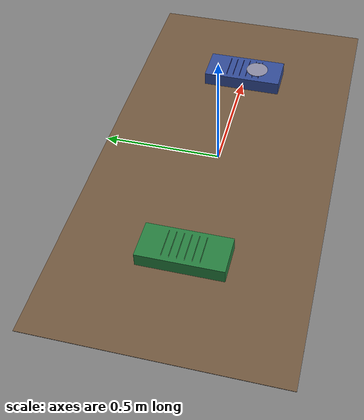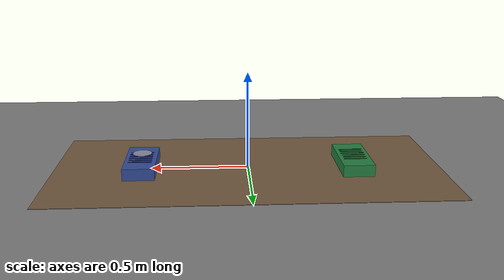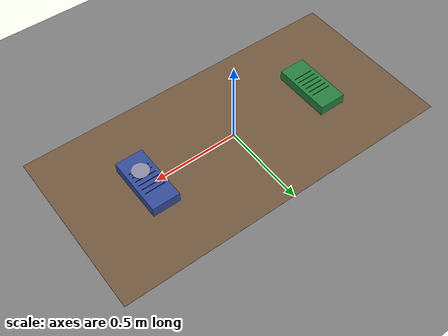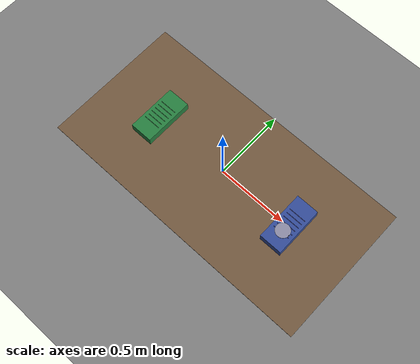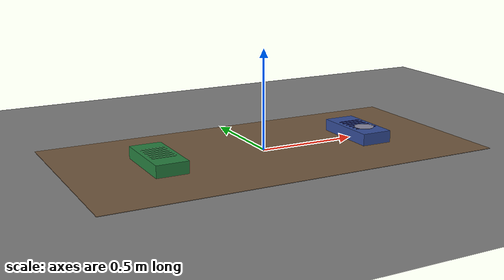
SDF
<?xml version="1.0"?>
<sdf version="1.8">
  <world name="wafer_cell">
    <gui fullscreen="0">
      <camera name="user_camera">
        <pose>0.0 -0.8 0.4 0.0 0.4 1.57</pose>
      </camera>
    </gui>
    <!-- Physics: Ignition DART solver, 1kHz -->
    <physics name="default_physics" type="dart">
      <max_step_size>0.001</max_step_size>
      <real_time_factor>1.0</real_time_factor>
    </physics>

    <!-- Required Ignition plugins -->
    <plugin filename="ignition-gazebo-physics-system"
            name="ignition::gazebo::systems::Physics"/>
    <plugin filename="ignition-gazebo-user-commands-system"
            name="ignition::gazebo::systems::UserCommands"/>
    <plugin filename="ignition-gazebo-scene-broadcaster-system"
            name="ignition::gazebo::systems::SceneBroadcaster"/>
    <plugin filename="ignition-gazebo-sensors-system"
            name="ignition::gazebo::systems::Sensors">
      <render_engine>ogre2</render_engine>
    </plugin>
    <plugin filename="ignition-gazebo-contact-system"
            name="ignition::gazebo::systems::Contact"/>
    <!-- Detachable joint for vacuum grip -->
    <plugin filename="libignition-gazebo-detachable-joint-system.so"
            name="ignition::gazebo::systems::DetachableJoint">
      <parent_link>scara_arm::ee_pad</parent_link>
      <child_model>wafer_1</child_model>
      <child_link>wafer_disc</child_link>
      <detach_topic>/waferflow/detach</detach_topic>
      <attach_topic>/waferflow/attach</attach_topic>
    </plugin>

    <!-- Sun light -->
    <light name="sun" type="directional">
      <cast_shadows>true</cast_shadows>
      <pose>0 0 10 0 0 0</pose>
      <diffuse>0.8 0.8 0.8 1</diffuse>
      <specular>0.1 0.1 0.1 1</specular>
      <direction>-0.5 0.1 -0.9</direction>
    </light>

    <!-- Overhead light above cassette -->
    <light name="overhead_cassette" type="point">
      <pose>0.55 0 0.8 0 0 0</pose>
      <diffuse>1.0 1.0 1.0 1</diffuse>
      <specular>0.2 0.2 0.2 1</specular>
      <attenuation>
        <range>2.0</range>
        <linear>0.5</linear>
        <quadratic>0.01</quadratic>
      </attenuation>
    </light>

    <!-- Ground plane -->
    <model name="ground_plane">
      <static>true</static>
      <link name="link">
        <collision name="collision">
          <geometry>
            <plane><normal>0 0 1</normal><size>10 10</size></plane>
          </geometry>
        </collision>
        <visual name="visual">
          <geometry>
            <plane><normal>0 0 1</normal><size>10 10</size></plane>
          </geometry>
          <material>
            <ambient>0.5 0.5 0.5 1</ambient>
            <diffuse>0.5 0.5 0.5 1</diffuse>
          </material>
        </visual>
      </link>
    </model>

    <!-- Workcell table -->
    <model name="workcell_table">
      <static>true</static>
      <pose>0 0 -0.025 0 0 0</pose>
      <link name="table_top">
        <collision name="collision">
          <geometry><box><size>2.0 1.0 0.05</size></box></geometry>
        </collision>
        <visual name="visual">
          <geometry><box><size>2.0 1.0 0.05</size></box></geometry>
          <material>
            <ambient>0.45 0.35 0.25 1</ambient>
            <diffuse>0.45 0.35 0.25 1</diffuse>
          </material>
        </visual>
      </link>
    </model>

    <!-- Source Cassette (5 slots A1–A5) -->
    <include>
      <uri>model://cassette</uri>
      <name>source_cassette</name>
      <pose>0.55 0 0.0 0 0 0</pose>
      <static>true</static>
    </include>

    <!-- Destination Stocker (5 slots B1–B5) -->
    <include>
      <uri>model://stocker</uri>
      <name>destination_stocker</name>
      <pose>-0.55 0 0.0 0 0 0</pose>
      <static>true</static>
    </include>

    <!-- Wafer disc in slot A1 -->
    <include>
      <uri>model://wafer_disc</uri>
      <name>wafer_1</name>
      <!-- A1 center: x=0.55, y=-0.06. Z=0.063 is just above ledge (0.062) -->
      <pose>0.55 -0.06 0.063 0 0 0</pose>
    </include>

  </world>
</sdf>

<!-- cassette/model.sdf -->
<sdf version="1.6">
  <model name="cassette">
    <static>true</static>

    <!-- Main body -->
    <link name="cassette_body">
      <pose>0 0 0.030 0 0 0</pose>
      <visual name="body_visual">
        <geometry>
          <box><size>0.160 0.350 0.060</size></box>
        </geometry>
        <material>
          <ambient>0.2 0.3 0.6 1.0</ambient>
          <diffuse>0.2 0.3 0.6 1.0</diffuse>
          <specular>0.1 0.1 0.2 0.5</specular>
        </material>
      </visual>
      <collision name="body_collision">
        <geometry>
          <box><size>0.160 0.350 0.060</size></box>
        </geometry>
      </collision>
    </link>

    <!-- Slot ledge dividers (5 slots × 4 dividers) — simplified as thin boxes -->
    <!-- Slot A1: y = -0.060 -->
    <link name="divider_a1_top">
      <pose>0 -0.075 0.062 0 0 0</pose>
      <visual name="vis"><geometry><box><size>0.120 0.002 0.004</size></box></geometry>
        <material><ambient>0.1 0.1 0.4 1</ambient></material></visual>
    </link>
    <!-- Slot A2: y = -0.030 -->
    <link name="divider_a2_top">
      <pose>0 -0.045 0.062 0 0 0</pose>
      <visual name="vis"><geometry><box><size>0.120 0.002 0.004</size></box></geometry>
        <material><ambient>0.1 0.1 0.4 1</ambient></material></visual>
    </link>
    <!-- Slot A3: y = 0.000 -->
    <link name="divider_a3_top">
      <pose>0 -0.015 0.062 0 0 0</pose>
      <visual name="vis"><geometry><box><size>0.120 0.002 0.004</size></box></geometry>
        <material><ambient>0.1 0.1 0.4 1</ambient></material></visual>
    </link>
    <!-- Slot A4: y = +0.030 -->
    <link name="divider_a4_top">
      <pose>0 0.015 0.062 0 0 0</pose>
      <visual name="vis"><geometry><box><size>0.120 0.002 0.004</size></box></geometry>
        <material><ambient>0.1 0.1 0.4 1</ambient></material></visual>
    </link>
    <!-- Slot A5: y = +0.060 -->
    <link name="divider_a5_top">
      <pose>0 0.045 0.062 0 0 0</pose>
      <visual name="vis"><geometry><box><size>0.120 0.002 0.004</size></box></geometry>
        <material><ambient>0.1 0.1 0.4 1</ambient></material></visual>
    </link>
    <link name="divider_bottom">
      <pose>0 0.075 0.062 0 0 0</pose>
      <visual name="vis"><geometry><box><size>0.120 0.002 0.004</size></box></geometry>
        <material><ambient>0.1 0.1 0.4 1</ambient></material></visual>
    </link>

  </model>
</sdf>

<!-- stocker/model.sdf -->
<sdf version="1.6">
  <!--
    Destination Stocker SDF Model
    ==============================
    5 slots (B1–B5), same pitch as cassette (30 mm).
    Green body to distinguish from source cassette.
  -->
  <model name="stocker">
    <static>true</static>

    <link name="stocker_body">
      <pose>0 0 0.030 0 0 0</pose>
      <visual name="body_visual">
        <geometry>
          <box><size>0.160 0.350 0.060</size></box>
        </geometry>
        <material>
          <ambient>0.15 0.50 0.25 1.0</ambient>
          <diffuse>0.15 0.50 0.25 1.0</diffuse>
          <specular>0.05 0.15 0.10 0.5</specular>
        </material>
      </visual>
      <collision name="body_collision">
        <geometry>
          <box><size>0.160 0.350 0.060</size></box>
        </geometry>
      </collision>
    </link>

    <!-- Dividers B1–B5 (same geometry as cassette) -->
    <link name="divider_b1"><pose>0 -0.075 0.062 0 0 0</pose>
      <visual name="vis"><geometry><box><size>0.120 0.002 0.004</size></box></geometry>
        <material><ambient>0.05 0.3 0.1 1</ambient></material></visual></link>
    <link name="divider_b2"><pose>0 -0.045 0.062 0 0 0</pose>
      <visual name="vis"><geometry><box><size>0.120 0.002 0.004</size></box></geometry>
        <material><ambient>0.05 0.3 0.1 1</ambient></material></visual></link>
    <link name="divider_b3"><pose>0 -0.015 0.062 0 0 0</pose>
      <visual name="vis"><geometry><box><size>0.120 0.002 0.004</size></box></geometry>
        <material><ambient>0.05 0.3 0.1 1</ambient></material></visual></link>
    <link name="divider_b4"><pose>0 0.015 0.062 0 0 0</pose>
      <visual name="vis"><geometry><box><size>0.120 0.002 0.004</size></box></geometry>
        <material><ambient>0.05 0.3 0.1 1</ambient></material></visual></link>
    <link name="divider_b5"><pose>0 0.045 0.062 0 0 0</pose>
      <visual name="vis"><geometry><box><size>0.120 0.002 0.004</size></box></geometry>
        <material><ambient>0.05 0.3 0.1 1</ambient></material></visual></link>
    <link name="divider_b_bottom"><pose>0 0.075 0.062 0 0 0</pose>
      <visual name="vis"><geometry><box><size>0.120 0.002 0.004</size></box></geometry>
        <material><ambient>0.05 0.3 0.1 1</ambient></material></visual></link>

  </model>
</sdf>

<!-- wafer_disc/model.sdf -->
<sdf version="1.6">
  <model name="wafer_disc">
    <link name="wafer_link">
      <pose>0 0 0.001 0 0 0</pose>

      <inertial>
        <mass>0.015</mass>
        <!-- Thin solid cylinder: I_xx = I_yy = m(3r² + h²)/12, I_zz = mr²/2 -->
        <inertia>
          <ixx>0.0000094</ixx>
          <ixy>0</ixy>
          <ixz>0</ixz>
          <iyy>0.0000094</iyy>
          <iyz>0</iyz>
          <izz>0.0000188</izz>
        </inertia>
      </inertial>

      <collision name="wafer_collision">
        <geometry>
          <cylinder>
            <radius>0.050</radius>
            <length>0.002</length>
          </cylinder>
        </geometry>
        <surface>
          <friction>
            <ode>
              <mu>0.8</mu>
              <mu2>0.6</mu2>
            </ode>
          </friction>
          <contact>
            <ode>
              <kp>1e6</kp>
              <kd>1.0</kd>
            </ode>
          </contact>
        </surface>
      </collision>

      <visual name="wafer_visual">
        <geometry>
          <cylinder>
            <radius>0.050</radius>
            <length>0.002</length>
          </cylinder>
        </geometry>
        <material>
          <ambient>0.55 0.55 0.60 0.95</ambient>
          <diffuse>0.55 0.55 0.65 0.95</diffuse>
          <specular>0.8 0.8 0.9 0.8</specular>
          <emissive>0 0 0 0</emissive>
        </material>
      </visual>

      <!-- Notch marker (small box) for rotation reference — like real wafer flat/notch -->
      <visual name="notch_visual">
        <pose>0.048 0 0.001 0 0 0</pose>
        <geometry>
          <box><size>0.003 0.008 0.002</size></box>
        </geometry>
        <material>
          <ambient>0.1 0.1 0.1 1</ambient>
          <diffuse>0.1 0.1 0.1 1</diffuse>
        </material>
      </visual>

    </link>
  </model>
</sdf>
